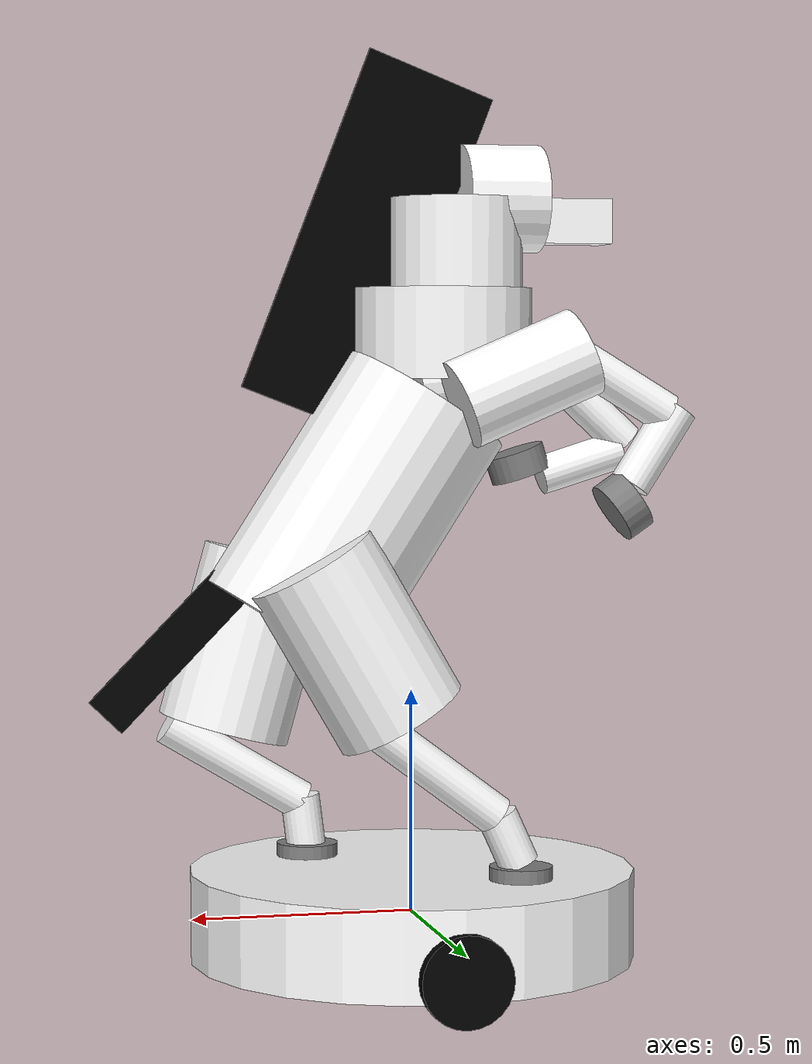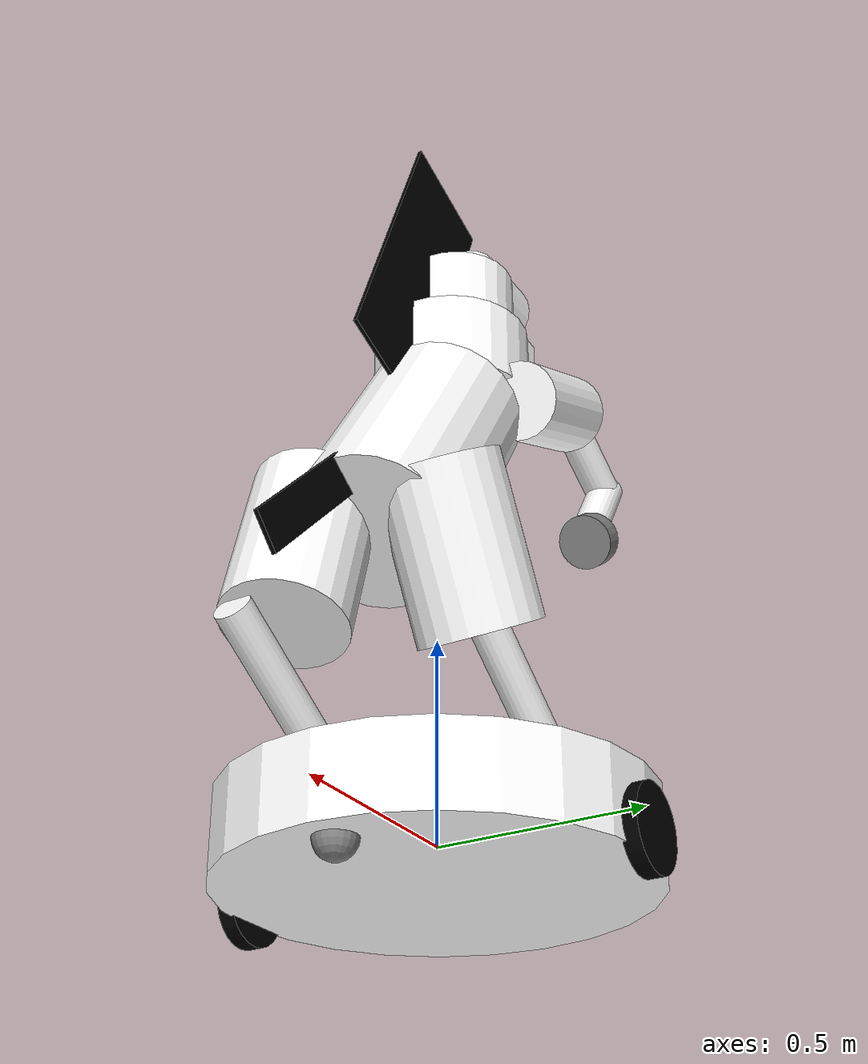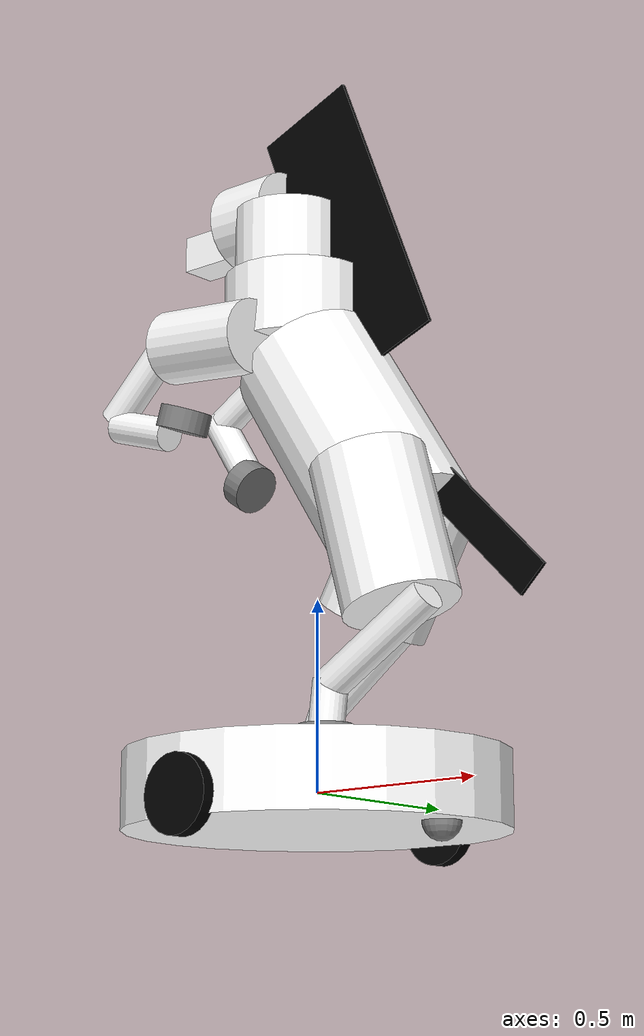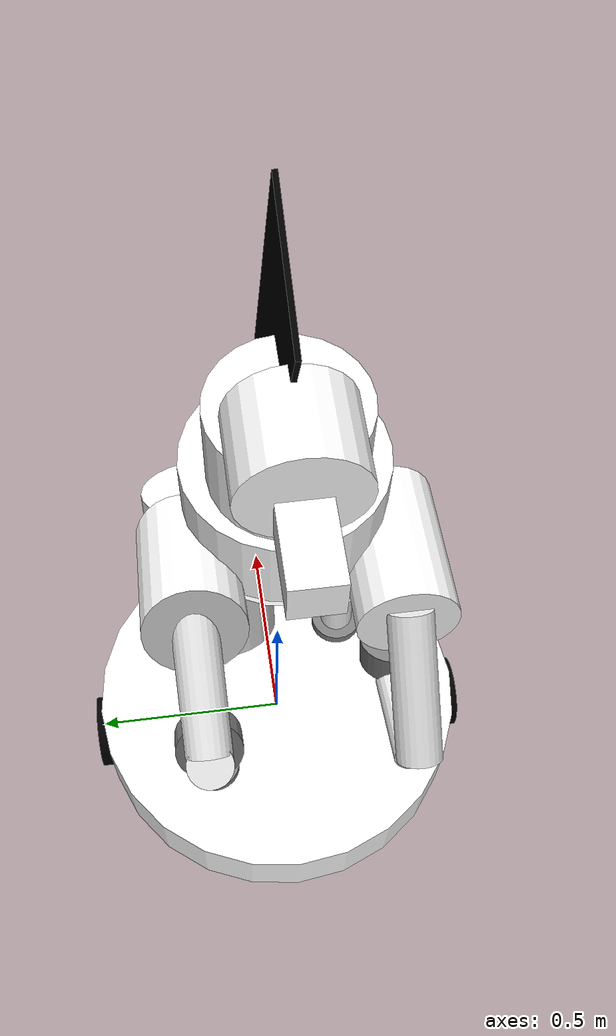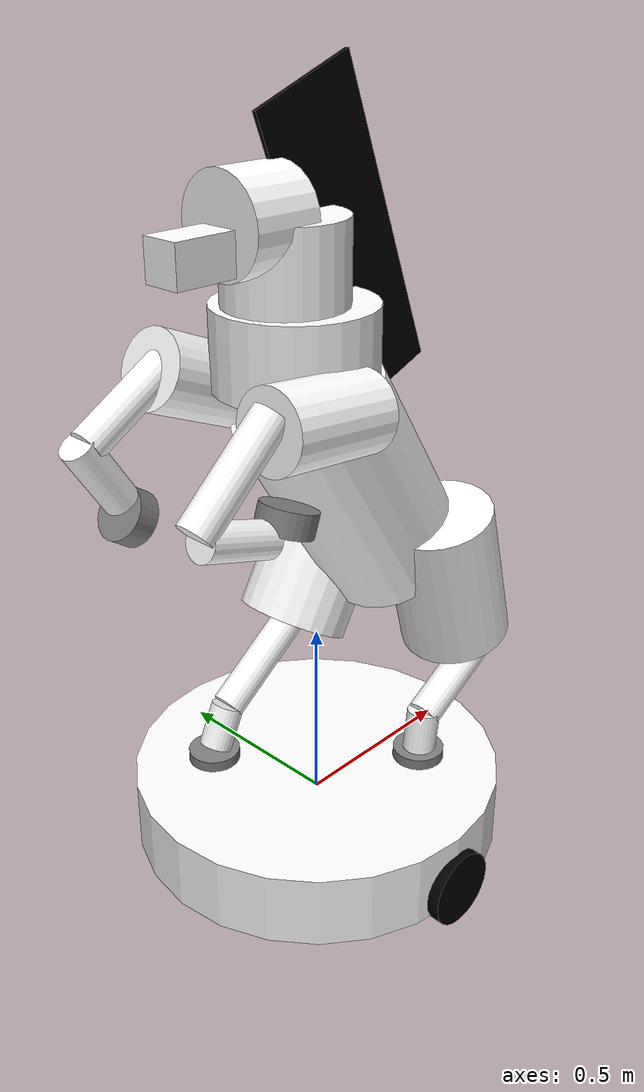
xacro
<?xml version="1.0"?>
<robot name="sam_bot" xmlns:xacro="http://ros.org/wiki/xacro">
  <xacro:include filename="$(find my_robot)/urdf/gazebo.urdf.xacro" />
  <!-- Define robot constants -->
  <!-- base_radius = 0.5 -->
  <!-- base_height = 0.2 -->
  <!-- wheel_radius = 0.1 -->
  <!-- wheel_width = 0.04 -->
  <!-- wheel_zoff = 0.05 -->
  <!-- caster_radius =  0.05 -->
  <!-- base_m = 2 -->
  <!-- wheel_m = 0.4 -->
  <!-- caster_m = 1 -->

  <!-- Define robot color -->
  <material name="grey">
    <color rgba="0.5 0.5 0.5 1"/>
  </material>

  <material name="white">
    <color rgba="1 1 1 1"/>
  </material>

  <material name="black">
    <color rgba="0 0 0 1"/>
  </material>

  <!-- Robot Base -->
  <link name="base_link">
    <visual>
      <geometry>
        <cylinder radius="0.5" length="0.2"/>
      </geometry>
      <material name="white"/>
    </visual>

    <collision>
      <geometry>
        <cylinder radius="0.5" length="0.2"/>
      </geometry>
    </collision>

    <inertial>
      <mass value="2"/>
      <inertia ixx="0.13" ixy="0.0" ixz="0.0" iyy="0.13" iyz="0.0" izz="0.25"/>
    </inertial>
  </link>

  <!-- Robot Footprint -->
  <link name="base_footprint"/>

  <joint name="base_joint" type="fixed">
    <parent link="base_link"/>
    <child link="base_footprint"/>
    <origin xyz="0.0 0.0 -0.15" rpy="0 0 0"/>
  </joint>
  <!-- Horse -->

  <!--Legs-->

  <!-- Right  -->
  <!-- Hoof-->
  <link name="right_hoof">
    <visual>
      <origin xyz="0 0 0" rpy="1.57 0 0"/>
      <geometry>
          <cylinder radius="0.07" length="0.06"/>
      </geometry>
      <material name="grey"/>
    </visual>

   <collision>
     <origin xyz="0 0 0" rpy="1.57 0 0"/>
     <geometry>
          <cylinder radius="0.07" length="0.06"/>
     </geometry>
   </collision>
<!-- todo -->
   <inertial>
     <mass value="0.001"/>
     <inertia ixx="0.001" ixy="0.0" ixz="0.0" iyy="0.001" iyz="0.0" izz="0.002"/>
   </inertial>
  </link>

  <joint name="right_hoof_joint" type="fixed">
    <parent link="base_link"/>
    <child link="right_hoof"/>
    <origin xyz="-0.2 0.2 0.1" rpy="1.57 0 0"/>
    <axis xyz="0 0 0"/>
  </joint>

  <!-- foot-->
  <link name="right_foot">
    <visual>
      <origin xyz="0 0 0" rpy="1.57 0 0"/>
      <geometry>
          <cylinder radius="0.045" length="0.12"/>
      </geometry>
      <material name="white"/>
    </visual>

   <collision>
     <origin xyz="0 0 0" rpy="1.57 0 0"/>
     <geometry>
          <cylinder radius="0.045" length="0.12"/>
     </geometry>
   </collision>
<!-- todo -->
   <inertial>
     <mass value="0.001"/>
     <inertia ixx="0.001" ixy="0.0" ixz="0.0" iyy="0.001" iyz="0.0" izz="0.002"/>
   </inertial>
  </link>

  <joint name="right_foot_joint" type="fixed">
    <parent link="base_link"/>
    <child link="right_foot"/>
    <origin xyz="-0.17 0.2 0.19" rpy="2.0 0 1.57"/>
    <axis xyz="0 0 0"/>
  </joint>

  <!-- knee-->
  <link name="right_knee">
    <visual>
      <origin xyz="0 0 0" rpy="1.57 0 0"/>
      <geometry>
          <cylinder radius="0.045" length="0.36"/>
      </geometry>
      <material name="white"/>
    </visual>

   <collision>
     <origin xyz="0 0 0" rpy="1.57 0 0"/>
     <geometry>
          <cylinder radius="0.045" length="0.36"/>
     </geometry>
   </collision>
<!-- todo -->
   <inertial>
     <mass value="0.001"/>
     <inertia ixx="0.001" ixy="0.0" ixz="0.0" iyy="0.001" iyz="0.0" izz="0.002"/>
   </inertial>
  </link>

  <joint name="right_knee_joint" type="fixed">
    <parent link="base_link"/>
    <child link="right_knee"/>
    <origin xyz="0 0.2 0.35" rpy="2.5 0 1.57"/>
    <axis xyz="0 0 0"/>
  </joint>

  <!-- hip-->
  <link name="right_hip">
    <visual>
      <origin xyz="0 0 0" rpy="1.57 0 0"/>
      <geometry>
          <cylinder radius="0.15" length="0.4"/>
      </geometry>
      <material name="white"/>
    </visual>

   <collision>
     <origin xyz="0 0 0" rpy="1.57 0 0"/>
     <geometry>
          <cylinder radius="0.15" length="0.4"/>
     </geometry>
   </collision>
<!-- todo -->
   <inertial>
     <mass value="0.001"/>
     <inertia ixx="0.001" ixy="0.0" ixz="0.0" iyy="0.001" iyz="0.0" izz="0.002"/>
   </inertial>
  </link>

  <joint name="right_hip_joint" type="fixed">
    <parent link="base_link"/>
    <child link="right_hip"/>
    <origin xyz="0.16 0.15 0.63" rpy="2.1 0 1.57"/>
    <axis xyz="0 0 0"/>
  </joint>

  <!-- Left  -->
  <!-- Hoof-->
  <link name="left_hoof">
    <visual>
      <origin xyz="0 0 0" rpy="1.57 0 0"/>
      <geometry>
          <cylinder radius="0.07" length="0.06"/>
      </geometry>
      <material name="grey"/>
    </visual>

   <collision>
     <origin xyz="0 0 0" rpy="1.57 0 0"/>
     <geometry>
          <cylinder radius="0.07" length="0.06"/>
     </geometry>
   </collision>
<!-- todo -->
   <inertial>
     <mass value="0.001"/>
     <inertia ixx="0.001" ixy="0.0" ixz="0.0" iyy="0.001" iyz="0.0" izz="0.002"/>
   </inertial>
  </link>

  <joint name="left_hoof_joint" type="fixed">
    <parent link="base_link"/>
    <child link="left_hoof"/>
    <origin xyz="0.2 -0.2 0.1" rpy="1.57 0 0"/>
    <axis xyz="0 0 0"/>
  </joint>

  <!-- foot-->
  <link name="left_foot">
    <visual>
      <origin xyz="0 0 0" rpy="1.57 0 0"/>
      <geometry>
          <cylinder radius="0.045" length="0.12"/>
      </geometry>
      <material name="white"/>
    </visual>

   <collision>
     <origin xyz="0 0 0" rpy="1.57 0 0"/>
     <geometry>
          <cylinder radius="0.045" length="0.12"/>
     </geometry>
   </collision>
<!-- todo -->
   <inertial>
     <mass value="0.001"/>
     <inertia ixx="0.001" ixy="0.0" ixz="0.0" iyy="0.001" iyz="0.0" izz="0.002"/>
   </inertial>
  </link>

  <joint name="left_foot_joint" type="fixed">
    <parent link="base_link"/>
    <child link="left_foot"/>
    <origin xyz="0.21 -0.2 0.18" rpy="1.7 0 1.57"/>
    <axis xyz="0 0 0"/>
  </joint>

  <!-- knee-->
  <link name="left_knee">
    <visual>
      <origin xyz="0 0 0" rpy="1.57 0 0"/>
      <geometry>
          <cylinder radius="0.045" length="0.36"/>
      </geometry>
      <material name="white"/>
    </visual>

   <collision>
     <origin xyz="0 0 0" rpy="1.57 0 0"/>
     <geometry>
          <cylinder radius="0.045" length="0.36"/>
     </geometry>
   </collision>
<!-- todo -->
   <inertial>
     <mass value="0.001"/>
     <inertia ixx="0.001" ixy="0.0" ixz="0.0" iyy="0.001" iyz="0.0" izz="0.002"/>
   </inertial>
  </link>

  <joint name="left_knee_joint" type="fixed">
    <parent link="base_link"/>
    <child link="left_knee"/>
    <origin xyz="0.37 -0.2 0.32" rpy="2.6 0 1.57"/>
    <axis xyz="0 0 0"/>
  </joint>

  <!-- hip-->
  <link name="left_hip">
    <visual>
      <origin xyz="0 0 0" rpy="1.57 0 0"/>
      <geometry>
          <cylinder radius="0.15" length="0.4"/>
      </geometry>
      <material name="white"/>
    </visual>

   <collision>
     <origin xyz="0 0 0" rpy="1.57 0 0"/>
     <geometry>
          <cylinder radius="0.15" length="0.4"/>
     </geometry>
   </collision>
<!-- todo -->
   <inertial>
     <mass value="0.001"/>
     <inertia ixx="0.001" ixy="0.0" ixz="0.0" iyy="0.001" iyz="0.0" izz="0.002"/>
   </inertial>
  </link>

  <joint name="left_hip_joint" type="fixed">
    <parent link="base_link"/>
    <child link="left_hip"/>
    <origin xyz="0.35 -0.15 0.6" rpy="1.3 0 1.57"/>
    <axis xyz="0 0 0"/>
  </joint>

<!-- Body -->
  <link name="body">
    <visual>
      <origin xyz="0 0 0" rpy="1.57 0 0"/>
      <geometry>
          <cylinder radius="0.2" length="0.6"/>
      </geometry>
      <material name="white"/>
    </visual>

   <collision>
     <origin xyz="0 0 0" rpy="1.57 0 0"/>
     <geometry>
          <cylinder radius="0.2" length="0.6"/>
     </geometry>
   </collision>
<!-- todo -->
   <inertial>
     <mass value="0.001"/>
     <inertia ixx="0.001" ixy="0.0" ixz="0.0" iyy="0.001" iyz="0.0" izz="0.002"/>
   </inertial>
  </link>

  <joint name="body_joint" type="fixed">
    <parent link="base_link"/>
    <child link="body"/>
    <origin xyz="0.13 0 0.9" rpy="1.0 0 1.57"/>
    <axis xyz="0 0 0"/>
  </joint>

  <!--Hands-->

  <!-- Left  -->
  <!--Shoulder-->
  <link name="left_shoulder">
    <visual>
      <origin xyz="0 0 0" rpy="1.57 0 0"/>
      <geometry>
          <cylinder radius="0.1" length="0.3"/>
      </geometry>
      <material name="white"/>
    </visual>

   <collision>
     <origin xyz="0 0 0" rpy="1.57 0 0"/>
     <geometry>
          <cylinder radius="0.11" length="0.3"/>
     </geometry>
   </collision>
<!-- todo -->
   <inertial>
     <mass value="0.001"/>
     <inertia ixx="0.001" ixy="0.0" ixz="0.0" iyy="0.001" iyz="0.0" izz="0.002"/>
   </inertial>
  </link>

  <joint name="left_shoulder_joint" type="fixed">
    <parent link="base_link"/>
    <child link="left_shoulder"/>
    <origin xyz="-0.2 0.2 1.2" rpy="0.4 0 1.57"/>
    <axis xyz="0 0 0"/>
  </joint>

  <!-- arm-->
  <link name="left_arm">
    <visual>
      <origin xyz="0 0 0" rpy="1.57 0 0"/>
      <geometry>
          <cylinder radius="0.045" length="0.3"/>
      </geometry>
      <material name="white"/>
    </visual>

   <collision>
     <origin xyz="0 0 0" rpy="1.57 0 0"/>
     <geometry>
          <cylinder radius="0.045" length="0.3"/>
     </geometry>
   </collision>
<!-- todo -->
   <inertial>
     <mass value="0.001"/>
     <inertia ixx="0.001" ixy="0.0" ixz="0.0" iyy="0.001" iyz="0.0" izz="0.002"/>
   </inertial>
  </link>

  <joint name="left_arm_joint" type="fixed">
    <parent link="base_link"/>
    <child link="left_arm"/>
    <origin xyz="-0.4 0.2 1.2" rpy="2.6 0 1.57"/>
    <axis xyz="0 0 0"/>
  </joint>

  <!-- hand-->
  <link name="left_hand">
    <visual>
      <origin xyz="0 0 0" rpy="1.57 0 0"/>
      <geometry>
          <cylinder radius="0.045" length="0.2"/>
      </geometry>
      <material name="white"/>
    </visual>

   <collision>
     <origin xyz="0 0 0" rpy="1.57 0 0"/>
     <geometry>
          <cylinder radius="0.045" length="0.2"/>
     </geometry>
   </collision>
<!-- todo -->
   <inertial>
     <mass value="0.001"/>
     <inertia ixx="0.001" ixy="0.0" ixz="0.0" iyy="0.001" iyz="0.0" izz="0.002"/>
   </inertial>
  </link>

  <joint name="left_hand_joint" type="fixed">
    <parent link="base_link"/>
    <child link="left_hand"/>
    <origin xyz="-0.5 0.2 1.05" rpy="1.0 0 1.57"/>
    <axis xyz="0 0 0"/>
  </joint>

  <!-- finger-->
  <link name="left_finger">
    <visual>
      <origin xyz="0 0 0" rpy="1.57 0 0"/>
      <geometry>
          <cylinder radius="0.07" length="0.06"/>
      </geometry>
      <material name="grey"/>
    </visual>

   <collision>
     <origin xyz="0 0 0" rpy="1.57 0 0"/>
     <geometry>
          <cylinder radius="0.07" length="0.06"/>
     </geometry>
   </collision>
<!-- todo -->
   <inertial>
     <mass value="0.001"/>
     <inertia ixx="0.001" ixy="0.0" ixz="0.0" iyy="0.001" iyz="0.0" izz="0.002"/>
   </inertial>
  </link>

  <joint name="left_finger_joint" type="fixed">
    <parent link="base_link"/>
    <child link="left_finger"/>
    <origin xyz="-0.43 0.2 0.92" rpy="0.6 0 1.57"/>
    <axis xyz="0 0 0"/>
  </joint>

  <!-- Right  -->
  <!--Shoulder-->
  <link name="right_shoulder">
    <visual>
      <origin xyz="0 0 0" rpy="1.57 0 0"/>
      <geometry>
          <cylinder radius="0.1" length="0.3"/>
      </geometry>
      <material name="white"/>
    </visual>

   <collision>
     <origin xyz="0 0 0" rpy="1.57 0 0"/>
     <geometry>
          <cylinder radius="0.11" length="0.3"/>
     </geometry>
   </collision>
<!-- todo -->
   <inertial>
     <mass value="0.001"/>
     <inertia ixx="0.001" ixy="0.0" ixz="0.0" iyy="0.001" iyz="0.0" izz="0.002"/>
   </inertial>
  </link>

  <joint name="right_shoulder_joint" type="fixed">
    <parent link="base_link"/>
    <child link="right_shoulder"/>
    <origin xyz="-0.2 -0.2 1.2" rpy="0.1 0 1.57"/>
    <axis xyz="0 0 0"/>
  </joint>

  <!-- arm-->
  <link name="right_arm">
    <visual>
      <origin xyz="0 0 0" rpy="1.57 0 0"/>
      <geometry>
          <cylinder radius="0.045" length="0.3"/>
      </geometry>
      <material name="white"/>
    </visual>

   <collision>
     <origin xyz="0 0 0" rpy="1.57 0 0"/>
     <geometry>
          <cylinder radius="0.045" length="0.3"/>
     </geometry>
   </collision>
<!-- todo -->
   <inertial>
     <mass value="0.001"/>
     <inertia ixx="0.001" ixy="0.0" ixz="0.0" iyy="0.001" iyz="0.0" izz="0.002"/>
   </inertial>
  </link>

  <joint name="right_arm_joint" type="fixed">
    <parent link="base_link"/>
    <child link="right_arm"/>
    <origin xyz="-0.45 -0.2 1.15" rpy="2.4 0 1.57"/>
    <axis xyz="0 0 0"/>
  </joint>

  <!-- hand-->
  <link name="right_hand">
    <visual>
      <origin xyz="0 0 0" rpy="1.57 0 0"/>
      <geometry>
          <cylinder radius="0.045" length="0.2"/>
      </geometry>
      <material name="white"/>
    </visual>

   <collision>
     <origin xyz="0 0 0" rpy="1.57 0 0"/>
     <geometry>
          <cylinder radius="0.045" length="0.2"/>
     </geometry>
   </collision>
<!-- todo -->
   <inertial>
     <mass value="0.001"/>
     <inertia ixx="0.001" ixy="0.0" ixz="0.0" iyy="0.001" iyz="0.0" izz="0.002"/>
   </inertial>
  </link>

  <joint name="right_hand_joint" type="fixed">
    <parent link="base_link"/>
    <child link="right_hand"/>
    <origin xyz="-0.45 -0.2 1.0" rpy="0.3 0 1.57"/>
    <axis xyz="0 0 0"/>
  </joint>

  <!-- finger-->
  <link name="right_finger">
    <visual>
      <origin xyz="0 0 0" rpy="1.57 0 0"/>
      <geometry>
          <cylinder radius="0.07" length="0.06"/>
      </geometry>
      <material name="grey"/>
    </visual>

   <collision>
     <origin xyz="0 0 0" rpy="1.57 0 0"/>
     <geometry>
          <cylinder radius="0.07" length="0.06"/>
     </geometry>
   </collision>
<!-- todo -->
   <inertial>
     <mass value="0.001"/>
     <inertia ixx="0.001" ixy="0.0" ixz="0.0" iyy="0.001" iyz="0.0" izz="0.002"/>
   </inertial>
  </link>

  <joint name="right_finger_joint" type="fixed">
    <parent link="base_link"/>
    <child link="right_finger"/>
    <origin xyz="-0.3 -0.2 1.0" rpy="1.9 0 1.57"/>
    <axis xyz="0 0 0"/>
  </joint>

<!-- Neck -->
  <link name="neck">
    <visual>
      <origin xyz="0 0 0" rpy="1.57 0 0"/>
      <geometry>
          <cylinder radius="0.2" length="0.2"/>
      </geometry>
      <material name="white"/>
    </visual>

   <collision>
     <origin xyz="0 0 0" rpy="1.57 0 0"/>
     <geometry>
          <cylinder radius="0.2" length="0.2"/>
     </geometry>
   </collision>
<!-- todo -->
   <inertial>
     <mass value="0.001"/>
     <inertia ixx="0.001" ixy="0.0" ixz="0.0" iyy="0.001" iyz="0.0" izz="0.002"/>
   </inertial>
  </link>

  <joint name="neck_joint" type="fixed">
    <parent link="base_link"/>
    <child link="neck"/>
    <origin xyz="-0.07 0 1.3" rpy="1.57 0 1.57"/>
    <axis xyz="0 0 0"/>
  </joint>
<!-- neckup -->
  <link name="neckup">
    <visual>
      <origin xyz="0 0 0" rpy="1.57 0 0"/>
      <geometry>
          <cylinder radius="0.15" length="0.2"/>
      </geometry>
      <material name="white"/>
    </visual>

   <collision>
     <origin xyz="0 0 0" rpy="1.57 0 0"/>
     <geometry>
          <cylinder radius="0.2" length="0.2"/>
     </geometry>
   </collision>
<!-- todo -->
   <inertial>
     <mass value="0.001"/>
     <inertia ixx="0.001" ixy="0.0" ixz="0.0" iyy="0.001" iyz="0.0" izz="0.002"/>
   </inertial>
  </link>

  <joint name="neckup_joint" type="fixed">
    <parent link="base_link"/>
    <child link="neckup"/>
    <origin xyz="-0.1 0 1.5" rpy="1.57 0 1.57"/>
    <axis xyz="0 0 0"/>
  </joint>

<!-- Head -->
  <link name="cheeks">
    <visual>
      <origin xyz="0 0 0" rpy="1.57 0 0"/>
      <geometry>
          <cylinder radius="0.12" length="0.18"/>
      </geometry>
      <material name="white"/>
    </visual>

   <collision>
     <origin xyz="0 0 0" rpy="1.57 0 0"/>
     <geometry>
          <cylinder radius="0.12" length="0.18"/>
     </geometry>
   </collision>
<!-- todo -->
   <inertial>
     <mass value="0.001"/>
     <inertia ixx="0.001" ixy="0.0" ixz="0.0" iyy="0.001" iyz="0.0" izz="0.002"/>
   </inertial>
  </link>

  <joint name="cheeks_joint" type="fixed">
    <parent link="base_link"/>
    <child link="cheeks"/>
    <origin xyz="-0.2 0 1.6" rpy="0 0 1.57"/>
    <axis xyz="0 0 0"/>
  </joint>

  <!-- Smile -->
  <link name="smile">
    <visual>
      <origin xyz="0 0 0" rpy="1.57 0 0"/>
      <geometry>
          <box size = "0.1 0.1 0.2"/>
      </geometry>
      <material name="white"/>
    </visual>

   <collision>
     <origin xyz="0 0 0" rpy="1.57 0 0"/>
     <geometry>
          <box size = "0.25 0.25 0.3"/>
     </geometry>
   </collision>
<!-- todo -->
   <inertial>
     <mass value="0.001"/>
     <inertia ixx="0.001" ixy="0.0" ixz="0.0" iyy="0.001" iyz="0.0" izz="0.002"/>
   </inertial>
  </link>

  <joint name="smile_joint" type="fixed">
    <parent link="base_link"/>
    <child link="smile"/>
    <origin xyz="-0.35 0 1.55" rpy="0 0 1.57"/>
    <axis xyz="0 0 0"/>
  </joint>

<!-- hair -->
  <link name="hair">
    <visual>
      <origin xyz="0 0 0" rpy="0 0 0"/>
      <geometry>
          <box size = "0.8 0.01 0.3"/>
      </geometry>
      <material name="black"/>
    </visual>

   <collision>
     <origin xyz="0 0 0" rpy="0 0 0"/>
     <geometry>
          <box size = "0.8 0.01 0.3"/>
     </geometry>
   </collision>
<!-- todo -->
   <inertial>
     <mass value="0.001"/>
     <inertia ixx="0.001" ixy="0.0" ixz="0.0" iyy="0.001" iyz="0.0" izz="0.002"/>
   </inertial>
  </link>

  <joint name="hair_joint" type="fixed">
    <parent link="base_link"/>
    <child link="hair"/>
    <origin xyz="0.1 0 1.5" rpy="0 1.2 0"/>
    <axis xyz="0 0 0"/>
  </joint>

<!-- tail -->
  <link name="tail">
    <visual>
      <origin xyz="0 0 0" rpy="0 0 0"/>
      <geometry>
          <box size = "0.4 0.01 0.1"/>
      </geometry>
      <material name="black"/>
    </visual>

   <collision>
     <origin xyz="0 0 0" rpy="0 0 0"/>
     <geometry>
          <box size = "0.4 0.01 0.1"/>
     </geometry>
   </collision>
<!-- todo -->
   <inertial>
     <mass value="0.001"/>
     <inertia ixx="0.001" ixy="0.0" ixz="0.0" iyy="0.001" iyz="0.0" izz="0.002"/>
   </inertial>
  </link>

  <joint name="tail_joint" type="fixed">
    <parent link="base_link"/>
    <child link="tail"/>
    <origin xyz="0.55 0 0.6" rpy="0 0.8 0"/>
    <axis xyz="0 0 0"/>
  </joint>

  <!-- Wheels -->
  <link name="drivewhl_l_link">
    <visual>
      <origin xyz="0 0 0" rpy="1.57 0 0"/>
      <geometry>
          <cylinder radius="0.1" length="0.04"/>
      </geometry>
      <material name="black"/>
    </visual>

   <collision>
     <origin xyz="0 0 0" rpy="1.57 0 0"/>
     <geometry>
       <cylinder radius="0.1" length="0.04"/>
     </geometry>
   </collision>

   <inertial>
     <mass value="0.4"/>
     <inertia ixx="0.001" ixy="0.0" ixz="0.0" iyy="0.001" iyz="0.0" izz="0.002"/>
   </inertial>
  </link>

  <joint name="drivewhl_l_joint" type="continuous">
    <parent link="base_link"/>
    <child link="drivewhl_l_link"/>
    <origin xyz="0 0.5 -0.05" rpy="0 0 0"/>
    <axis xyz="0 1 0"/>
  </joint>

  <link name="drivewhl_r_link">
    <visual>
      <origin xyz="0 0 0" rpy="1.57 0 0"/>
      <geometry>
          <cylinder radius="0.1" length="0.04"/>
      </geometry>
      <material name="black"/>
    </visual>

   <collision>
     <origin xyz="0 0 0" rpy="1.57 0 0"/>
     <geometry>
       <cylinder radius="0.1" length="0.04"/>
     </geometry>
   </collision>

   <inertial>
     <mass value="0.4"/>
     <inertia ixx="0.001" ixy="0.0" ixz="0.0" iyy="0.001" iyz="0.0" izz="0.002"/>
   </inertial>
  </link>

  <joint name="drivewhl_r_joint" type="continuous">
    <parent link="base_link"/>
    <child link="drivewhl_r_link"/>
    <origin xyz="0 -0.5 -0.05" rpy="0 0 0"/>
    <axis xyz="0 1 0"/>
  </joint>

  <!-- Caster Wheel -->
  <link name="front_caster">
    <visual>
      <geometry>
        <sphere radius="0.05"/>
      </geometry>
      <material name="grey"/>
    </visual>

    <collision>
      <geometry>
        <sphere radius="0.05"/>
      </geometry>
    </collision>

    <inertial>
      <mass value="1"/>
      <inertia ixx="0.002" ixy="0.0" ixz="0.0" iyy="0.002" iyz="0.0" izz="0.002"/>
    </inertial>
  </link>

  <joint name="caster_joint" type="fixed">
    <parent link="base_link"/>
    <child link="front_caster"/>
    <origin xyz="0.4 0.0 -0.1" rpy="0 0 0"/>
  </joint>
</robot>
